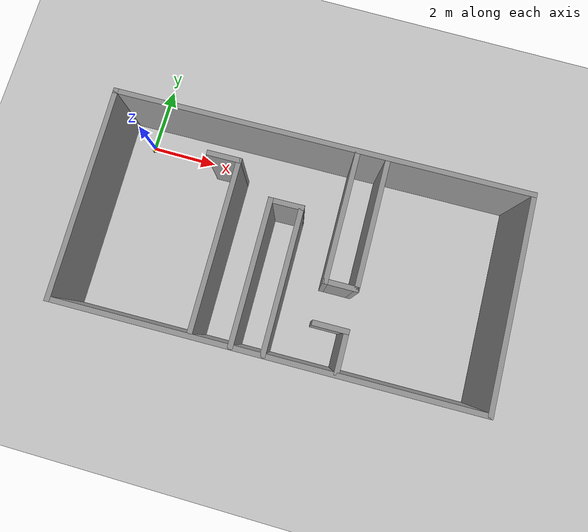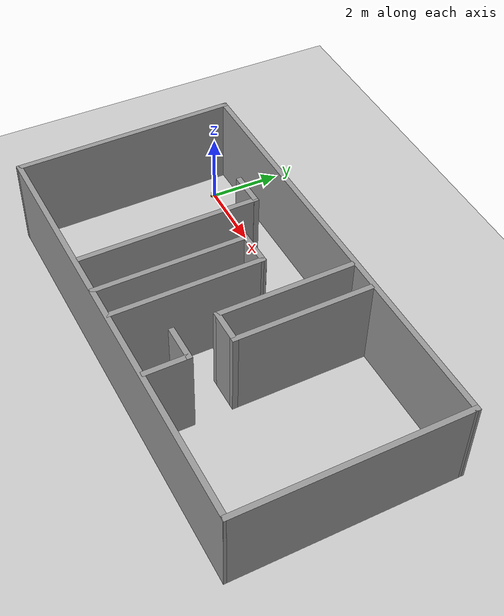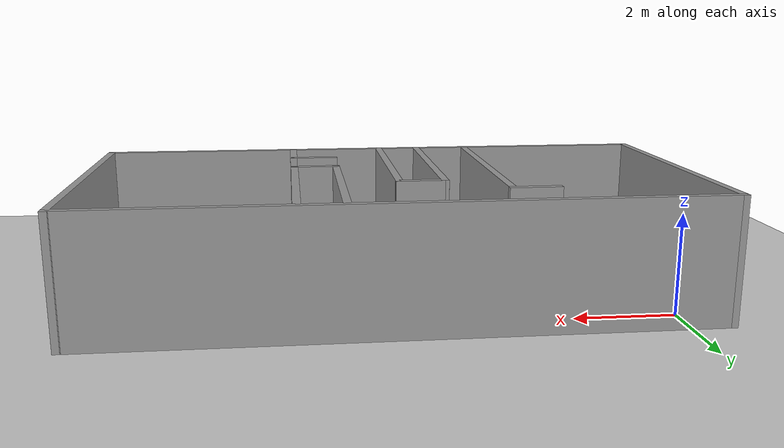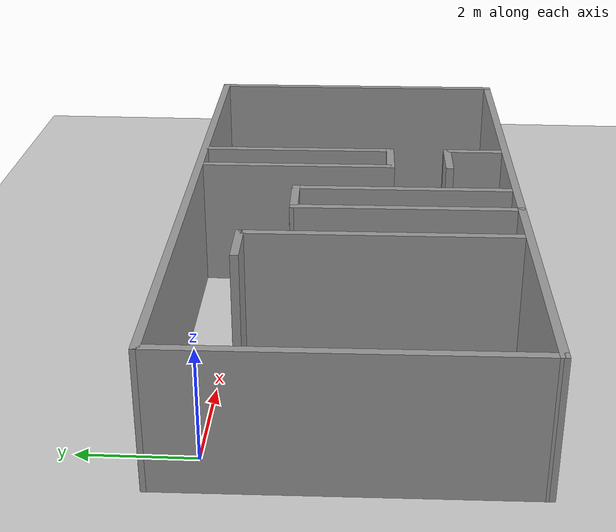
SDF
<sdf version="1.7">
 <world name="default">
  <light name="sun" type="directional">
   <pose>0 0 10 0 -0 0</pose>
   <diffuse>0.8 0.8 0.8 1</diffuse>
   <specular>0.2 0.2 0.2 1</specular>
   <attenuation>
    <range>1000</range>
    <constant>0.9</constant>
    <linear>0.01</linear>
    <quadratic>0.001</quadratic>
   </attenuation>
   <direction>-0.5 0.1 -0.9</direction>
   <spot><inner_angle>0</inner_angle><outer_angle>0</outer_angle><falloff>0</falloff></spot>
  </light>
  <model name="ground_plane">
   <static>1</static>
   <link name="link">
    <collision name="collision">
     <geometry><plane><normal>0 0 1</normal><size>100 100</size></plane></geometry>
     <surface>
      <contact><collide_bitmask>65535</collide_bitmask></contact>
      <friction><ode><mu>100</mu><mu2>50</mu2></ode></friction>
     </surface>
    </collision>
    <visual name="visual">
     <cast_shadows>0</cast_shadows>
     <geometry><plane><normal>0 0 1</normal><size>100 100</size></plane></geometry>
     <material>
      <script><uri>file://media/materials/scripts/gazebo.material</uri><name>Gazebo/Grey</name></script>
     </material>
    </visual>
   </link>
  </model>
  <gravity>0 0 -9.8</gravity>
  <magnetic_field>6e-06 2.3e-05 -4.2e-05</magnetic_field>
  <atmosphere type="adiabatic"/>
  <physics type="ode">
   <max_step_size>0.001</max_step_size>
   <real_time_factor>1</real_time_factor>
   <real_time_update_rate>1000</real_time_update_rate>
  </physics>
  <scene><ambient>0.4 0.4 0.4 1</ambient><background>0.7 0.7 0.7 1</background><shadows>1</shadows></scene>
  <spherical_coordinates>
   <surface_model>EARTH_WGS84</surface_model>
   <latitude_deg>0</latitude_deg>
   <longitude_deg>0</longitude_deg>
   <elevation>0</elevation>
   <heading_deg>0</heading_deg>
  </spherical_coordinates>
  <model name="mycar3">
   <link name="base_footprint">
    <inertial>
     <pose>0.00127 0 0.093611 0 -0 0</pose>
     <mass>0.63</mass>
     <inertia>
      <ixx>0.00557395</ixx>
      <ixy>0</ixy>
      <ixz>-1.11111e-05</ixz>
      <iyy>0.00563694</iyy>
      <iyz>0</iyz>
      <izz>0.00261003</izz>
     </inertia>
    </inertial>
    <collision name="base_footprint_fixed_joint_lump__base_link_collision">
     <pose>0 0 0.055 0 -0 0</pose>
     <geometry><cylinder><length>0.08</length><radius>0.1</radius></cylinder></geometry>
    </collision>
    <collision name="base_footprint_fixed_joint_lump__camera_collision_1">
     <pose>0.08 0 0.1075 0 -0 0</pose>
     <geometry><box><size>0.01 0.025 0.025</size></box></geometry>
    </collision>
    <collision name="base_footprint_fixed_joint_lump__support_collision_2">
     <pose>0 0 0.17 0 -0 0</pose>
     <geometry><cylinder><length>0.15</length><radius>0.01</radius></cylinder></geometry>
    </collision>
    <collision name="base_footprint_fixed_joint_lump__laser_collision_3">
     <pose>0 0 0.27 0 -0 0</pose>
     <geometry><cylinder><length>0.05</length><radius>0.03</radius></cylinder></geometry>
    </collision>
    <visual name="base_footprint_visual"><geometry><sphere><radius>0.001</radius></sphere></geometry></visual>
    <visual name="base_footprint_fixed_joint_lump__base_link_visual_1">
     <pose>0 0 0.055 0 -0 0</pose>
     <geometry><cylinder><length>0.08</length><radius>0.1</radius></cylinder></geometry>
     <material>
      <script><name>Gazebo/Yellow</name><uri>file://media/materials/scripts/gazebo.material</uri></script>
     </material>
    </visual>
    <visual name="base_footprint_fixed_joint_lump__camera_visual_2">
     <pose>0.08 0 0.1075 0 -0 0</pose>
     <geometry><box><size>0.01 0.025 0.025</size></box></geometry>
     <material>
      <script><name>Gazebo/Blue</name><uri>file://media/materials/scripts/gazebo.material</uri></script>
     </material>
    </visual>
    <visual name="base_footprint_fixed_joint_lump__support_visual_3">
     <pose>0 0 0.17 0 -0 0</pose>
     <geometry><cylinder><length>0.15</length><radius>0.01</radius></cylinder></geometry>
     <material>
      <script><name>Gazebo/White</name><uri>file://media/materials/scripts/gazebo.material</uri></script>
     </material>
    </visual>
    <visual name="base_footprint_fixed_joint_lump__laser_visual_4">
     <pose>0 0 0.27 0 -0 0</pose>
     <geometry><cylinder><length>0.05</length><radius>0.03</radius></cylinder></geometry>
     <material>
      <script><name>Gazebo/Black</name><uri>file://media/materials/scripts/gazebo.material</uri></script>
     </material>
    </visual>
    <sensor name="camera_node" type="camera">
     <update_rate>30</update_rate>
     <camera name="head">
      <horizontal_fov>1.39626</horizontal_fov>
      <image><width>1280</width><height>720</height><format>R8G8B8</format></image>
      <clip><near>0.02</near><far>300</far></clip>
      <noise><type>gaussian</type><mean>0</mean><stddev>0.007</stddev></noise>
     </camera>
     <plugin name="gazebo_camera" filename="libgazebo_ros_camera.so">
      <alwaysOn>1</alwaysOn>
      <updateRate>0.0</updateRate>
      <cameraName>/camera</cameraName>
      <imageTopicName>image_raw</imageTopicName>
      <cameraInfoTopicName>camera_info</cameraInfoTopicName>
      <frameName>camera</frameName>
      <hackBaseline>0.07</hackBaseline>
      <distortionK1>0.0</distortionK1>
      <distortionK2>0.0</distortionK2>
      <distortionK3>0.0</distortionK3>
      <distortionT1>0.0</distortionT1>
      <distortionT2>0.0</distortionT2>
      <robotNamespace>/</robotNamespace>
     </plugin>
     <pose>0.08 0 0.1075 0 -0 0</pose>
    </sensor>
    <sensor name="camera" type="depth">
     <always_on>1</always_on>
     <update_rate>20</update_rate>
     <camera>
      <horizontal_fov>1.0472</horizontal_fov>
      <image><format>R8G8B8</format><width>640</width><height>480</height></image>
      <clip><near>0.05</near><far>8</far></clip>
     </camera>
     <plugin name="kinect_camera_controller" filename="libgazebo_ros_openni_kinect.so">
      <cameraName>camera</cameraName>
      <alwaysOn>1</alwaysOn>
      <updateRate>10</updateRate>
      <imageTopicName>rgb/image_raw</imageTopicName>
      <depthImageTopicName>depth/image_raw</depthImageTopicName>
      <pointCloudTopicName>depth/points</pointCloudTopicName>
      <cameraInfoTopicName>rgb/camera_info</cameraInfoTopicName>
      <depthImageCameraInfoTopicName>depth/camera_info</depthImageCameraInfoTopicName>
      <frameName>support_depth</frameName>
      <baseline>0.1</baseline>
      <distortion_k1>0.0</distortion_k1>
      <distortion_k2>0.0</distortion_k2>
      <distortion_k3>0.0</distortion_k3>
      <distortion_t1>0.0</distortion_t1>
      <distortion_t2>0.0</distortion_t2>
      <pointCloudCutoff>0.4</pointCloudCutoff>
      <robotNamespace>/</robotNamespace>
     </plugin>
     <pose>0 0 0.17 0 -0 0</pose>
    </sensor>
    <sensor name="rplidar" type="ray">
     <visualize>1</visualize>
     <update_rate>5.5</update_rate>
     <ray>
      <scan>
       <horizontal>
        <samples>360</samples>
        <resolution>1</resolution>
        <min_angle>-3</min_angle>
        <max_angle>3</max_angle>
       </horizontal>
       <vertical><samples>1</samples><min_angle>0</min_angle><max_angle>0</max_angle></vertical>
      </scan>
      <range><min>0.1</min><max>30</max><resolution>0.01</resolution></range>
      <noise><type>gaussian</type><mean>0</mean><stddev>0.01</stddev></noise>
     </ray>
     <plugin name="gazebo_rplidar" filename="libgazebo_ros_laser.so">
      <topicName>/scan</topicName>
      <frameName>laser</frameName>
      <robotNamespace>/</robotNamespace>
     </plugin>
     <pose>0 0 0.27 0 -0 0</pose>
    </sensor>
   </link>
   <joint name="back_wheel2base_link" type="revolute">
    <pose relative_to="base_footprint">-0.0925 0 0.0075 0 -0 0</pose>
    <parent>base_footprint</parent>
    <child>back_wheel</child>
    <axis>
     <xyz>1 1 1</xyz>
     <limit><lower>-1e+16</lower><upper>1e+16</upper></limit>
     <dynamics><spring_reference>0</spring_reference><spring_stiffness>0</spring_stiffness></dynamics>
    </axis>
   </joint>
   <link name="back_wheel">
    <pose relative_to="back_wheel2base_link">0 0 0 0 -0 0</pose>
    <inertial>
     <mass>0.03</mass>
     <inertia>
      <ixx>6.75e-07</ixx>
      <ixy>0</ixy>
      <ixz>0</ixz>
      <iyy>6.75e-07</iyy>
      <iyz>0</iyz>
      <izz>6.75e-07</izz>
     </inertia>
    </inertial>
    <collision name="back_wheel_collision">
     <geometry><sphere><radius>0.0075</radius></sphere></geometry>
    </collision>
    <visual name="back_wheel_visual">
     <geometry><sphere><radius>0.0075</radius></sphere></geometry>
     <material>
      <script><name>Gazebo/Red</name><uri>file://media/materials/scripts/gazebo.material</uri></script>
     </material>
    </visual>
   </link>
   <joint name="front_wheel2base_link" type="revolute">
    <pose relative_to="base_footprint">0.0925 0 0.0075 0 -0 0</pose>
    <parent>base_footprint</parent>
    <child>front_wheel</child>
    <axis>
     <xyz>1 1 1</xyz>
     <limit><lower>-1e+16</lower><upper>1e+16</upper></limit>
     <dynamics><spring_reference>0</spring_reference><spring_stiffness>0</spring_stiffness></dynamics>
    </axis>
   </joint>
   <link name="front_wheel">
    <pose relative_to="front_wheel2base_link">0 0 0 0 -0 0</pose>
    <inertial>
     <mass>0.03</mass>
     <inertia>
      <ixx>6.75e-07</ixx>
      <ixy>0</ixy>
      <ixz>0</ixz>
      <iyy>6.75e-07</iyy>
      <iyz>0</iyz>
      <izz>6.75e-07</izz>
     </inertia>
    </inertial>
    <collision name="front_wheel_collision">
     <geometry><sphere><radius>0.0075</radius></sphere></geometry>
    </collision>
    <visual name="front_wheel_visual">
     <geometry><sphere><radius>0.0075</radius></sphere></geometry>
     <material>
      <script><name>Gazebo/Red</name><uri>file://media/materials/scripts/gazebo.material</uri></script>
     </material>
    </visual>
   </link>
   <joint name="left_wheel2base_link" type="revolute">
    <pose relative_to="base_footprint">0 0.1 0.0325 0 -0 0</pose>
    <parent>base_footprint</parent>
    <child>left_wheel</child>
    <axis>
     <xyz>0 1 0</xyz>
     <limit><lower>-1e+16</lower><upper>1e+16</upper></limit>
     <dynamics><spring_reference>0</spring_reference><spring_stiffness>0</spring_stiffness></dynamics>
    </axis>
   </joint>
   <link name="left_wheel">
    <pose relative_to="left_wheel2base_link">0 0 0 0 -0 0</pose>
    <inertial>
     <mass>0.05</mass>
     <inertia>
      <ixx>1.41406e-05</ixx>
      <ixy>0</ixy>
      <ixz>0</ixz>
      <iyy>1.41406e-05</iyy>
      <iyz>0</iyz>
      <izz>2.64063e-05</izz>
     </inertia>
    </inertial>
    <collision name="left_wheel_collision">
     <pose>0 0 0 1.5708 -0 0</pose>
     <geometry><cylinder><length>0.015</length><radius>0.0325</radius></cylinder></geometry>
    </collision>
    <visual name="left_wheel_visual">
     <pose>0 0 0 1.5708 -0 0</pose>
     <geometry><cylinder><length>0.015</length><radius>0.0325</radius></cylinder></geometry>
     <material>
      <script><name>Gazebo/Red</name><uri>file://media/materials/scripts/gazebo.material</uri></script>
     </material>
    </visual>
   </link>
   <joint name="right_wheel2base_link" type="revolute">
    <pose relative_to="base_footprint">0 -0.1 0.0325 0 -0 0</pose>
    <parent>base_footprint</parent>
    <child>right_wheel</child>
    <axis>
     <xyz>0 1 0</xyz>
     <limit><lower>-1e+16</lower><upper>1e+16</upper></limit>
     <dynamics><spring_reference>0</spring_reference><spring_stiffness>0</spring_stiffness></dynamics>
    </axis>
   </joint>
   <link name="right_wheel">
    <pose relative_to="right_wheel2base_link">0 0 0 0 -0 0</pose>
    <inertial>
     <mass>0.05</mass>
     <inertia>
      <ixx>1.41406e-05</ixx>
      <ixy>0</ixy>
      <ixz>0</ixz>
      <iyy>1.41406e-05</iyy>
      <iyz>0</iyz>
      <izz>2.64063e-05</izz>
     </inertia>
    </inertial>
    <collision name="right_wheel_collision">
     <pose>0 0 0 1.5708 -0 0</pose>
     <geometry><cylinder><length>0.015</length><radius>0.0325</radius></cylinder></geometry>
    </collision>
    <visual name="right_wheel_visual">
     <pose>0 0 0 1.5708 -0 0</pose>
     <geometry><cylinder><length>0.015</length><radius>0.0325</radius></cylinder></geometry>
     <material>
      <script><name>Gazebo/Red</name><uri>file://media/materials/scripts/gazebo.material</uri></script>
     </material>
    </visual>
   </link>
   <plugin name="differential_drive_controller" filename="/opt/ros/noetic/lib/libgazebo_ros_diff_drive.so">
    <rosDebugLevel>Debug</rosDebugLevel>
    <publishWheelTF>1</publishWheelTF>
    <robotNamespace>/</robotNamespace>
    <publishTf>1</publishTf>
    <publishWheelJointState>1</publishWheelJointState>
    <alwaysOn>1</alwaysOn>
    <updateRate>100.0</updateRate>
    <legacyMode>1</legacyMode>
    <leftJoint>left_wheel2base_link</leftJoint>
    <rightJoint>right_wheel2base_link</rightJoint>
    <wheelSeparation>0.2</wheelSeparation>
    <wheelDiameter>0.065</wheelDiameter>
    <broadcastTF>1</broadcastTF>
    <wheelTorque>30</wheelTorque>
    <wheelAcceleration>1.8</wheelAcceleration>
    <commandTopic>cmd_vel</commandTopic>
    <odometryFrame>odom</odometryFrame>
    <odometryTopic>odom</odometryTopic>
    <robotBaseFrame>base_footprint</robotBaseFrame>
   </plugin>
   <frame name="camera2base_link" attached_to="base_link"><pose>0.08 0 0.0525 0 -0 0</pose></frame>
   <frame name="camera" attached_to="camera2base_link"/>
   <frame name="laser2support" attached_to="support"><pose>0 0 0.1 0 -0 0</pose></frame>
   <frame name="laser" attached_to="laser2support"/>
   <frame name="support2base_link" attached_to="base_link"><pose>0 0 0.115 0 -0 0</pose></frame>
   <frame name="support" attached_to="support2base_link"/>
   <frame name="base_link2base_footprint" attached_to="base_footprint"><pose>0 0 0.055 0 -0 0</pose></frame>
   <frame name="base_link" attached_to="base_link2base_footprint"/>
   <pose>0.006443 -0.01284 0 0 -0 0.014076</pose>
  </model>
  <model name="R2">
   <pose>5.31993 -3.49659 0 0 -0 -1.55347</pose>
   <link name="Wall_11">
    <collision name="Wall_11_Collision">
     <geometry><box><size>1.01745 0.15 2.5</size></box></geometry>
     <pose>0 0 1.25 0 -0 0</pose>
    </collision>
    <visual name="Wall_11_Visual">
     <pose>0 0 1.25 0 -0 0</pose>
     <geometry><box><size>1.01745 0.15 2.5</size></box></geometry>
     <material>
      <script><uri>file://media/materials/scripts/gazebo.material</uri><name>Gazebo/Grey</name></script>
      <ambient>1 1 1 1</ambient>
     </material>
     <meta><layer>0</layer></meta>
    </visual>
    <pose>-0.536934 1.48475 0 0 -0 -1.5708</pose>
   </link>
   <link name="Wall_15">
    <collision name="Wall_15_Collision">
     <geometry><box><size>3.8 0.15 2.5</size></box></geometry>
     <pose>0 0 1.25 0 -0 0</pose>
    </collision>
    <visual name="Wall_15_Visual">
     <pose>0 0 1.25 0 -0 0</pose>
     <geometry><box><size>3.8 0.15 2.5</size></box></geometry>
     <material>
      <script><uri>file://media/materials/scripts/gazebo.material</uri><name>Gazebo/Grey</name></script>
      <ambient>1 1 1 1</ambient>
     </material>
     <meta><layer>0</layer></meta>
    </visual>
    <pose>-2.36193 1.05102 0 0 -0 3.14159</pose>
   </link>
   <link name="Wall_18">
    <collision name="Wall_18_Collision">
     <geometry><box><size>1.02529 0.15 2.5</size></box></geometry>
     <pose>0 0 1.25 0 -0 0</pose>
    </collision>
    <visual name="Wall_18_Visual">
     <pose>0 0 1.25 0 -0 0</pose>
     <geometry><box><size>1.02529 0.15 2.5</size></box></geometry>
     <material>
      <script><uri>file://media/materials/scripts/gazebo.material</uri><name>Gazebo/Grey</name></script>
      <ambient>1 1 1 1</ambient>
     </material>
     <meta><layer>0</layer></meta>
    </visual>
    <pose>0.61657 1.48341 0 0 -0 -1.5708</pose>
   </link>
   <link name="Wall_20">
    <collision name="Wall_20_Collision">
     <geometry><box><size>1.25 0.15 2.5</size></box></geometry>
     <pose>0 0 1.25 0 -0 0</pose>
    </collision>
    <visual name="Wall_20_Visual">
     <pose>0 0 1.25 0 -0 0</pose>
     <geometry><box><size>1.25 0.15 2.5</size></box></geometry>
     <material>
      <script><uri>file://media/materials/scripts/gazebo.material</uri><name>Gazebo/Grey</name></script>
      <ambient>1 1 1 1</ambient>
     </material>
     <meta><layer>0</layer></meta>
    </visual>
    <pose>1.16657 1.92358 0 0 -0 0</pose>
   </link>
   <link name="Wall_23">
    <collision name="Wall_23_Collision">
     <geometry><box><size>1.01538 0.15 2.5</size></box></geometry>
     <pose>0 0 1.25 0 -0 0</pose>
    </collision>
    <visual name="Wall_23_Visual">
     <pose>0 0 1.25 0 -0 0</pose>
     <geometry><box><size>1.01538 0.15 2.5</size></box></geometry>
     <material>
      <script><uri>file://media/materials/scripts/gazebo.material</uri><name>Gazebo/Grey</name></script>
      <ambient>1 1 1 1</ambient>
     </material>
     <meta><layer>0</layer></meta>
    </visual>
    <pose>-3.20366 -2.53289 0 0 -0 -1.5708</pose>
   </link>
   <link name="Wall_25">
    <collision name="Wall_25_Collision">
     <geometry><box><size>5 0.15 2.5</size></box></geometry>
     <pose>0 0 1.25 0 -0 0</pose>
    </collision>
    <visual name="Wall_25_Visual">
     <pose>0 0 1.25 0 -0 0</pose>
     <geometry><box><size>5 0.15 2.5</size></box></geometry>
     <material>
      <script><uri>file://media/materials/scripts/gazebo.material</uri><name>Gazebo/Grey</name></script>
      <ambient>1 1 1 1</ambient>
     </material>
     <meta><layer>0</layer></meta>
    </visual>
    <pose>-0.778656 -2.10327 0 0 -0 0</pose>
   </link>
   <link name="Wall_28">
    <collision name="Wall_28_Collision">
     <geometry><box><size>1.03917 0.15 2.5</size></box></geometry>
     <pose>0 0 1.25 0 -0 0</pose>
    </collision>
    <visual name="Wall_28_Visual">
     <pose>0 0 1.25 0 -0 0</pose>
     <geometry><box><size>1.03917 0.15 2.5</size></box></geometry>
     <material>
      <script><uri>file://media/materials/scripts/gazebo.material</uri><name>Gazebo/Grey</name></script>
      <ambient>1 1 1 1</ambient>
     </material>
     <meta><layer>0</layer></meta>
    </visual>
    <pose>-2.33554 -0.518695 0 0 -0 -1.56279</pose>
   </link>
   <link name="Wall_3">
    <collision name="Wall_3_Collision">
     <geometry><box><size>6.24822 0.15 2.5</size></box></geometry>
     <pose>0 0 1.25 0 -0 0</pose>
    </collision>
    <visual name="Wall_3_Visual">
     <pose>0 0 1.25 0 -0 0</pose>
     <geometry><box><size>6.24822 0.15 2.5</size></box></geometry>
     <material>
      <script><uri>file://media/materials/scripts/gazebo.material</uri><name>Gazebo/Grey</name></script>
      <ambient>1 1 1 1</ambient>
     </material>
     <meta><layer>0</layer></meta>
    </visual>
    <pose>-1.2591 6.05 0 0 -0 -0.00038</pose>
   </link>
   <link name="Wall_30">
    <collision name="Wall_30_Collision">
     <geometry><box><size>4.25 0.15 2.5</size></box></geometry>
     <pose>0 0 1.25 0 -0 0</pose>
    </collision>
    <visual name="Wall_30_Visual">
     <pose>0 0 1.25 0 -0 0</pose>
     <geometry><box><size>4.25 0.15 2.5</size></box></geometry>
     <material>
      <script><uri>file://media/materials/scripts/gazebo.material</uri><name>Gazebo/Grey</name></script>
      <ambient>1 1 1 1</ambient>
     </material>
     <meta><layer>0</layer></meta>
    </visual>
    <pose>-0.285542 -0.074126 0 0 -0 0</pose>
   </link>
   <link name="Wall_32">
    <collision name="Wall_32_Collision">
     <geometry><box><size>4.25 0.15 2.5</size></box></geometry>
     <pose>0 0 1.25 0 -0 0</pose>
    </collision>
    <visual name="Wall_32_Visual">
     <pose>0 0 1.25 0 -0 0</pose>
     <geometry><box><size>4.25 0.15 2.5</size></box></geometry>
     <material>
      <script><uri>file://media/materials/scripts/gazebo.material</uri><name>Gazebo/Grey</name></script>
      <ambient>1 1 1 1</ambient>
     </material>
     <meta><layer>0</layer></meta>
    </visual>
    <pose>-0.281984 -0.963263 0 0 -0 0</pose>
   </link>
   <link name="Wall_5">
    <collision name="Wall_5_Collision">
     <geometry><box><size>12.25 0.15 2.5</size></box></geometry>
     <pose>0 0 1.25 0 -0 0</pose>
    </collision>
    <visual name="Wall_5_Visual">
     <pose>0 0 1.25 0 -0 0</pose>
     <geometry><box><size>12.25 0.15 2.5</size></box></geometry>
     <material>
      <script><uri>file://media/materials/scripts/gazebo.material</uri><name>Gazebo/Grey</name></script>
      <ambient>1 1 1 1</ambient>
     </material>
     <meta><layer>0</layer></meta>
    </visual>
    <pose>1.79001 -0.001159 0 0 -0 -1.5708</pose>
   </link>
   <link name="Wall_6">
    <collision name="Wall_6_Collision">
     <geometry><box><size>6.24822 0.15 2.5</size></box></geometry>
     <pose>0 0 1.25 0 -0 0</pose>
    </collision>
    <visual name="Wall_6_Visual">
     <pose>0 0 1.25 0 -0 0</pose>
     <geometry><box><size>6.24822 0.15 2.5</size></box></geometry>
     <material>
      <script><uri>file://media/materials/scripts/gazebo.material</uri><name>Gazebo/Grey</name></script>
      <ambient>1 1 1 1</ambient>
     </material>
     <meta><layer>0</layer></meta>
    </visual>
    <pose>-1.2591 -6.05 0 0 -0 3.14121</pose>
   </link>
   <link name="Wall_7">
    <collision name="Wall_7_Collision">
     <geometry><box><size>12.25 0.15 2.5</size></box></geometry>
     <pose>0 0 1.25 0 -0 0</pose>
    </collision>
    <visual name="Wall_7_Visual">
     <pose>0 0 1.25 0 -0 0</pose>
     <geometry><box><size>12.25 0.15 2.5</size></box></geometry>
     <material>
      <script><uri>file://media/materials/scripts/gazebo.material</uri><name>Gazebo/Grey</name></script>
      <ambient>1 1 1 1</ambient>
     </material>
     <meta><layer>0</layer></meta>
    </visual>
    <pose>-4.30821 0.001159 0 0 -0 1.5708</pose>
   </link>
   <link name="Wall_9">
    <collision name="Wall_9_Collision">
     <geometry><box><size>3.8 0.15 2.5</size></box></geometry>
     <pose>0 0 1.25 0 -0 0</pose>
    </collision>
    <visual name="Wall_9_Visual">
     <pose>0 0 1.25 0 -0 0</pose>
     <geometry><box><size>3.8 0.15 2.5</size></box></geometry>
     <material>
      <script><uri>file://media/materials/scripts/gazebo.material</uri><name>Gazebo/Grey</name></script>
      <ambient>1 1 1 1</ambient>
     </material>
     <meta><layer>0</layer></meta>
    </visual>
    <pose>-2.36193 1.91847 0 0 -0 0</pose>
   </link>
   <static>1</static>
  </model>
 </world>
</sdf>
